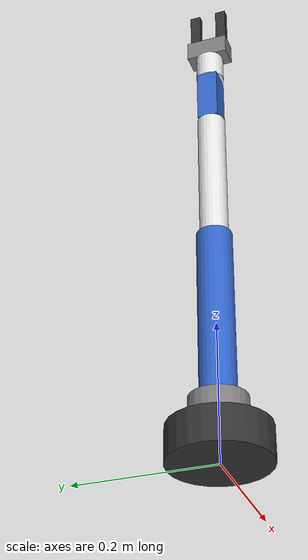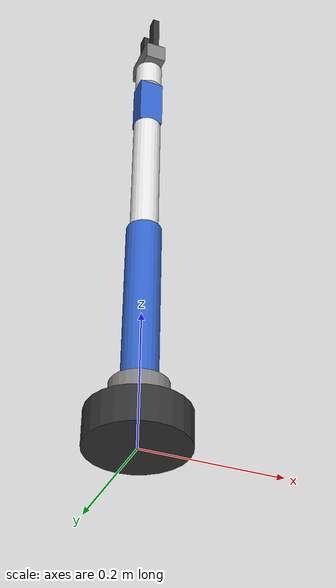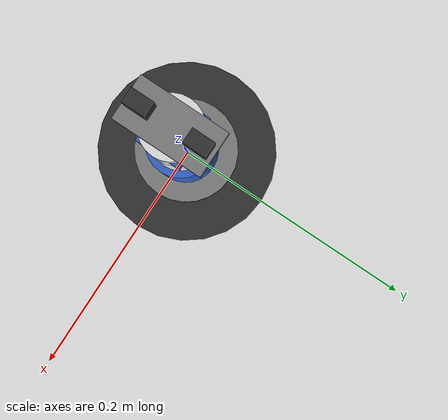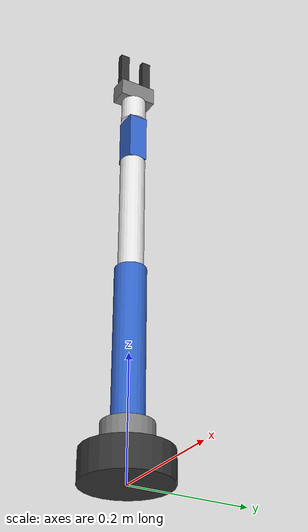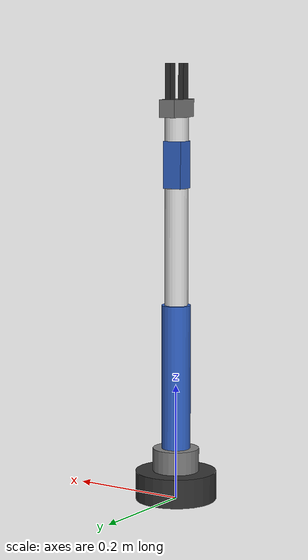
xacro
<?xml version="1.0"?>
<robot xmlns:xacro="http://www.ros.org/wiki/xacro" name="sorting_arm">

  <xacro:property name="PI" value="3.1415926535897931"/>

  <material name="blue">
    <color rgba="0.2 0.4 0.8 1"/>
  </material>

  <material name="white">
    <color rgba="0.9 0.9 0.9 1"/>
  </material>

  <material name="grey">
    <color rgba="0.5 0.5 0.5 1"/>
  </material>

  <material name="dark_grey">
    <color rgba="0.2 0.2 0.2 1"/>
  </material>

  <material name="orange">
    <color rgba="1.0 0.5 0.0 1"/>
  </material>

  <link name="world"/>

  <joint name="fixed_base" type="fixed">
    <parent link="world"/>
    <child link="base_link"/>
    <origin xyz="0 0 0" rpy="0 0 0"/>
  </joint>

  <link name="base_link">
    <visual>
      <origin xyz="0 0 0.025" rpy="0 0 0"/>
      <geometry>
        <cylinder radius="0.07" length="0.05"/>
      </geometry>
      <material name="dark_grey"/>
    </visual>
    <collision>
      <origin xyz="0 0 0.025" rpy="0 0 0"/>
      <geometry>
        <cylinder radius="0.07" length="0.05"/>
      </geometry>
    </collision>
    <inertial>
      <origin xyz="0 0 0.025" rpy="0 0 0"/>
      <mass value="1.5"/>
      <inertia ixx="0.003" ixy="0" ixz="0" iyy="0.003" iyz="0" izz="0.003"/>
    </inertial>
  </link>

  <link name="link1">
    <visual>
      <origin xyz="0 0 0.02" rpy="0 0 0"/>
      <geometry>
        <cylinder radius="0.04" length="0.04"/>
      </geometry>
      <material name="grey"/>
    </visual>
    <collision>
      <origin xyz="0 0 0.02" rpy="0 0 0"/>
      <geometry>
        <cylinder radius="0.04" length="0.04"/>
      </geometry>
    </collision>
    <inertial>
      <origin xyz="0 0 0.02" rpy="0 0 0"/>
      <mass value="0.3"/>
      <inertia ixx="0.0006" ixy="0" ixz="0" iyy="0.0006" iyz="0" izz="0.0004"/>
    </inertial>
  </link>

  <joint name="joint1" type="revolute">
    <parent link="base_link"/>
    <child link="link1"/>
    <origin xyz="0 0 0.05" rpy="0 0 0"/>
    <axis xyz="0 0 1"/>
    <limit lower="${-PI}" upper="${PI}" effort="50" velocity="1.5"/>
    <dynamics damping="0.7" friction="0.2"/>
  </joint>

  <link name="link2">
    <visual>
      <origin xyz="0 0 0.125" rpy="0 0 0"/>
      <geometry>
        <cylinder radius="0.025" length="0.25"/>
      </geometry>
      <material name="blue"/>
    </visual>
    <collision>
      <origin xyz="0 0 0.125" rpy="0 0 0"/>
      <geometry>
        <cylinder radius="0.025" length="0.25"/>
      </geometry>
    </collision>
    <inertial>
      <origin xyz="0 0 0.125" rpy="0 0 0"/>
      <mass value="0.4"/>
      <inertia ixx="0.00208" ixy="0" ixz="0" iyy="0.00208" iyz="0" izz="0.00025"/>
    </inertial>
  </link>

  <joint name="joint2" type="revolute">
    <parent link="link1"/>
    <child link="link2"/>
    <origin xyz="0 0 0.04" rpy="0 0 0"/>
    <axis xyz="0 1 0"/>
    <limit lower="-2.0" upper="2.0" effort="15.0" velocity="1.0"/>
    <dynamics damping="0.7" friction="0.2"/>
  </joint>

  <link name="link3">
    <visual>
      <origin xyz="0 0 0.10" rpy="0 0 0"/>
      <geometry>
        <cylinder radius="0.02" length="0.20"/>
      </geometry>
      <material name="white"/>
    </visual>
    <collision>
      <origin xyz="0 0 0.10" rpy="0 0 0"/>
      <geometry>
        <cylinder radius="0.02" length="0.20"/>
      </geometry>
    </collision>
    <inertial>
      <origin xyz="0 0 0.10" rpy="0 0 0"/>
      <mass value="0.3"/>
      <inertia ixx="0.001" ixy="0" ixz="0" iyy="0.001" iyz="0" izz="0.00012"/>
    </inertial>
  </link>

  <joint name="joint3" type="revolute">
    <parent link="link2"/>
    <child link="link3"/>
    <origin xyz="0 0 0.25" rpy="0 0 0"/>
    <axis xyz="0 1 0"/>
    <limit lower="-2.5" upper="0.5" effort="15.0" velocity="1.0"/>
    <dynamics damping="0.5" friction="0.15"/>
  </joint>

  <link name="link4">
    <visual>
      <origin xyz="0 0 0.04" rpy="0 0 0"/>
      <geometry>
        <box size="0.035 0.03 0.08"/>
      </geometry>
      <material name="blue"/>
    </visual>
    <collision>
      <origin xyz="0 0 0.04" rpy="0 0 0"/>
      <geometry>
        <box size="0.035 0.03 0.08"/>
      </geometry>
    </collision>
    <inertial>
      <origin xyz="0 0 0.04" rpy="0 0 0"/>
      <mass value="0.15"/>
      <inertia ixx="0.0002" ixy="0" ixz="0" iyy="0.0002" iyz="0" izz="0.00008"/>
    </inertial>
  </link>

  <joint name="joint4" type="revolute">
    <parent link="link3"/>
    <child link="link4"/>
    <origin xyz="0 0 0.20" rpy="0 0 0"/>
    <axis xyz="0 1 0"/>
    <limit lower="-2.0" upper="2.0" effort="8.0" velocity="1.0"/>
    <dynamics damping="0.3" friction="0.1"/>
  </joint>

  <link name="link5">
    <visual>
      <origin xyz="0 0 0.02" rpy="0 0 0"/>
      <geometry>
        <cylinder radius="0.02" length="0.04"/>
      </geometry>
      <material name="white"/>
    </visual>
    <collision>
      <origin xyz="0 0 0.02" rpy="0 0 0"/>
      <geometry>
        <cylinder radius="0.02" length="0.04"/>
      </geometry>
    </collision>
    <inertial>
      <origin xyz="0 0 0.02" rpy="0 0 0"/>
      <mass value="0.08"/>
      <inertia ixx="0.00004" ixy="0" ixz="0" iyy="0.00004" iyz="0" izz="0.00002"/>
    </inertial>
  </link>

  <joint name="joint5" type="revolute">
    <parent link="link4"/>
    <child link="link5"/>
    <origin xyz="0 0 0.08" rpy="0 0 0"/>
    <axis xyz="0 0 1"/>
    <limit lower="${-PI}" upper="${PI}" effort="10" velocity="2.0"/>
    <dynamics damping="0.2" friction="0.05"/>
  </joint>

  <link name="gripper_base">
    <visual>
      <origin xyz="0 0 0.015" rpy="0 0 0"/>
      <geometry>
        <box size="0.03 0.06 0.03"/>
      </geometry>
      <material name="grey"/>
    </visual>
    <collision>
      <origin xyz="0 0 0.015" rpy="0 0 0"/>
      <geometry>
        <box size="0.03 0.06 0.03"/>
      </geometry>
    </collision>
    <inertial>
      <origin xyz="0 0 0.015" rpy="0 0 0"/>
      <mass value="0.05"/>
      <inertia ixx="0.00002" ixy="0" ixz="0" iyy="0.00002" iyz="0" izz="0.00002"/>
    </inertial>
  </link>

  <joint name="gripper_base_joint" type="fixed">
    <parent link="link5"/>
    <child link="gripper_base"/>
    <origin xyz="0 0 0.04" rpy="0 0 0"/>
  </joint>

  <link name="gripper_left">
    <visual>
      <origin xyz="0 0 0.03" rpy="0 0 0"/>
      <geometry>
        <box size="0.01 0.015 0.06"/>
      </geometry>
      <material name="dark_grey"/>
    </visual>
    <collision>
      <origin xyz="0 0 0.03" rpy="0 0 0"/>
      <geometry>
        <box size="0.01 0.015 0.06"/>
      </geometry>
    </collision>
    <inertial>
      <origin xyz="0 0 0.03" rpy="0 0 0"/>
      <mass value="0.02"/>
      <inertia ixx="0.000005" ixy="0" ixz="0" iyy="0.000005" iyz="0" izz="0.000002"/>
    </inertial>
  </link>

  <joint name="gripper_left_joint" type="prismatic">
    <parent link="gripper_base"/>
    <child link="gripper_left"/>
    <origin xyz="0 0.02 0.03" rpy="0 0 0"/>
    <axis xyz="0 1 0"/>
    <limit lower="0" upper="0.025" effort="10" velocity="0.2"/>
    <dynamics damping="0.5"/>
  </joint>

  <link name="gripper_right">
    <visual>
      <origin xyz="0 0 0.03" rpy="0 0 0"/>
      <geometry>
        <box size="0.01 0.015 0.06"/>
      </geometry>
      <material name="dark_grey"/>
    </visual>
    <collision>
      <origin xyz="0 0 0.03" rpy="0 0 0"/>
      <geometry>
        <box size="0.01 0.015 0.06"/>
      </geometry>
    </collision>
    <inertial>
      <origin xyz="0 0 0.03" rpy="0 0 0"/>
      <mass value="0.02"/>
      <inertia ixx="0.000005" ixy="0" ixz="0" iyy="0.000005" iyz="0" izz="0.000002"/>
    </inertial>
  </link>

  <joint name="gripper_right_joint" type="prismatic">
    <parent link="gripper_base"/>
    <child link="gripper_right"/>
    <origin xyz="0 -0.02 0.03" rpy="0 0 0"/>
    <axis xyz="0 -1 0"/>
    <limit lower="0" upper="0.025" effort="10" velocity="0.2"/>
    <dynamics damping="0.5"/>
  </joint>

  <gazebo>
    <plugin name="gazebo_ros_control" filename="libgazebo_ros_control.so">
      <robotNamespace>/sorting_arm</robotNamespace>
      <robotSimType>gazebo_ros_control/DefaultRobotHWSim</robotSimType>
    </plugin>
  </gazebo>

  <gazebo reference="base_link">
    <material>Gazebo/DarkGrey</material>
    <mu1>1.0</mu1>
    <mu2>1.0</mu2>
  </gazebo>

  <gazebo reference="link1">
    <material>Gazebo/Orange</material>
  </gazebo>

  <gazebo reference="link2">
    <material>Gazebo/Blue</material>
  </gazebo>

  <gazebo reference="link3">
    <material>Gazebo/White</material>
  </gazebo>

  <gazebo reference="link4">
    <material>Gazebo/Blue</material>
  </gazebo>

  <gazebo reference="link5">
    <material>Gazebo/White</material>
  </gazebo>

  <gazebo reference="gripper_base">
    <material>Gazebo/Grey</material>
  </gazebo>

  <gazebo reference="gripper_left">
    <material>Gazebo/DarkGrey</material>
    <mu1>1.5</mu1>
    <mu2>1.5</mu2>
  </gazebo>

  <gazebo reference="gripper_right">
    <material>Gazebo/DarkGrey</material>
    <mu1>1.5</mu1>
    <mu2>1.5</mu2>
  </gazebo>

  <transmission name="trans_joint1">
    <type>transmission_interface/SimpleTransmission</type>
    <joint name="joint1">
      <hardwareInterface>hardware_interface/PositionJointInterface</hardwareInterface>
    </joint>
    <actuator name="motor1">
      <hardwareInterface>hardware_interface/PositionJointInterface</hardwareInterface>
      <mechanicalReduction>1</mechanicalReduction>
    </actuator>
  </transmission>

  <transmission name="trans_joint2">
    <type>transmission_interface/SimpleTransmission</type>
    <joint name="joint2">
      <hardwareInterface>hardware_interface/PositionJointInterface</hardwareInterface>
    </joint>
    <actuator name="motor2">
      <hardwareInterface>hardware_interface/PositionJointInterface</hardwareInterface>
      <mechanicalReduction>1</mechanicalReduction>
    </actuator>
  </transmission>

  <transmission name="trans_joint3">
    <type>transmission_interface/SimpleTransmission</type>
    <joint name="joint3">
      <hardwareInterface>hardware_interface/PositionJointInterface</hardwareInterface>
    </joint>
    <actuator name="motor3">
      <hardwareInterface>hardware_interface/PositionJointInterface</hardwareInterface>
      <mechanicalReduction>1</mechanicalReduction>
    </actuator>
  </transmission>

  <transmission name="trans_joint4">
    <type>transmission_interface/SimpleTransmission</type>
    <joint name="joint4">
      <hardwareInterface>hardware_interface/PositionJointInterface</hardwareInterface>
    </joint>
    <actuator name="motor4">
      <hardwareInterface>hardware_interface/PositionJointInterface</hardwareInterface>
      <mechanicalReduction>1</mechanicalReduction>
    </actuator>
  </transmission>

  <transmission name="trans_joint5">
    <type>transmission_interface/SimpleTransmission</type>
    <joint name="joint5">
      <hardwareInterface>hardware_interface/PositionJointInterface</hardwareInterface>
    </joint>
    <actuator name="motor5">
      <hardwareInterface>hardware_interface/PositionJointInterface</hardwareInterface>
      <mechanicalReduction>1</mechanicalReduction>
    </actuator>
  </transmission>

  <transmission name="trans_gripper_left">
    <type>transmission_interface/SimpleTransmission</type>
    <joint name="gripper_left_joint">
      <hardwareInterface>hardware_interface/PositionJointInterface</hardwareInterface>
    </joint>
    <actuator name="gripper_left_motor">
      <hardwareInterface>hardware_interface/PositionJointInterface</hardwareInterface>
      <mechanicalReduction>1</mechanicalReduction>
    </actuator>
  </transmission>

  <transmission name="trans_gripper_right">
    <type>transmission_interface/SimpleTransmission</type>
    <joint name="gripper_right_joint">
      <hardwareInterface>hardware_interface/PositionJointInterface</hardwareInterface>
    </joint>
    <actuator name="gripper_right_motor">
      <hardwareInterface>hardware_interface/PositionJointInterface</hardwareInterface>
      <mechanicalReduction>1</mechanicalReduction>
    </actuator>
  </transmission>

</robot>
